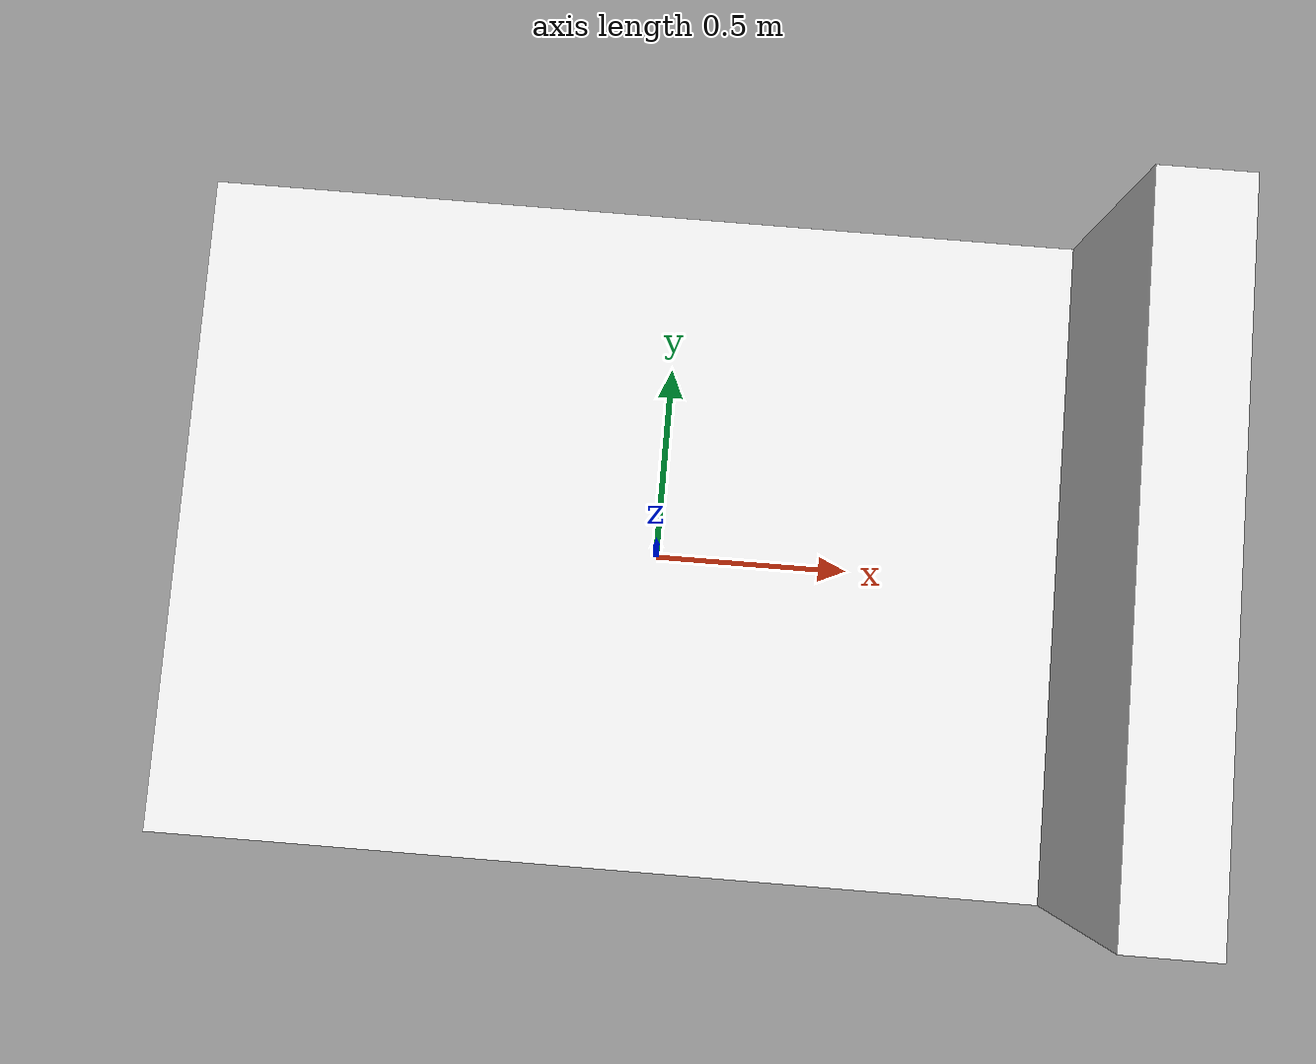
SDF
<?xml version="1.0"?>
<sdf version="1.6">
  <model name="rwc2015/bed">
    <link name="1_link">
      <collision name="1_col">
        <geometry>
          <box>
            <size>2.18 1.5 0.21</size>
          </box>
        </geometry>
      </collision>
      <visual name="1_vis">
        <geometry>
          <box>
            <size>2.18 1.5 0.21</size>
          </box>
        </geometry>
        <material>
          <ambient>0.9 0.9 0.9 1</ambient>
        </material>
      </visual>
      <pose>0.0 0.0 0.41 0 0 0</pose>
    </link>
    <link name="2_link">
      <collision name="2_col">
        <geometry>
          <box>
            <size>0.03 1.5 0.51</size>
          </box>
        </geometry>
      </collision>
      <visual name="2_vis">
        <geometry>
          <box>
            <size>0.03 1.5 0.51</size>
          </box>
        </geometry>
        <material>
          <ambient>0.9 0.9 0.9 1</ambient>
        </material>
      </visual>
      <pose>-1.075 0.0 0.255 0 0 0</pose>
    </link>
    <link name="3_link">
      <collision name="3_col">
        <geometry>
          <box>
            <size>0.2 1.5 0.75</size>
          </box>
        </geometry>
      </collision>
      <visual name="3_vis">
        <geometry>
          <box>
            <size>0.2 1.5 0.75</size>
          </box>
        </geometry>
        <material>
          <ambient>0.9 0.9 0.9 1</ambient>
        </material>
      </visual>
      <pose>1.01 0.0 0.68 0 0 0</pose>
    </link>
    <link name="in_front_of">
      <virtual_volume name="in_front_of_vv">
        <geometry>
          <box>
            <size>0.9 0.4 1</size>
          </box>
        </geometry>
        <pose>-1.45 0.0 0.5 0 0 0</pose>
      </virtual_volume>
    </link>
    <link name="in_front_of_pos2">
      <virtual_volume name="in_front_of_pos2_vv">
        <geometry>
          <box>
            <size>0.4 0.8 1</size>
          </box>
        </geometry>
        <pose>-0.6 1.1 0.5 0 0 0</pose>
      </virtual_volume>
    </link>
    <link name="at_bedside">
      <virtual_volume name="at_bedside_vv">
        <geometry>
          <box>
            <size>2.0 2.8 1</size>
          </box>
        </geometry>
        <pose>0.0 0.0 0.5 0 0 0</pose>
      </virtual_volume>
    </link>
    <static>true</static>
  </model>
</sdf>
